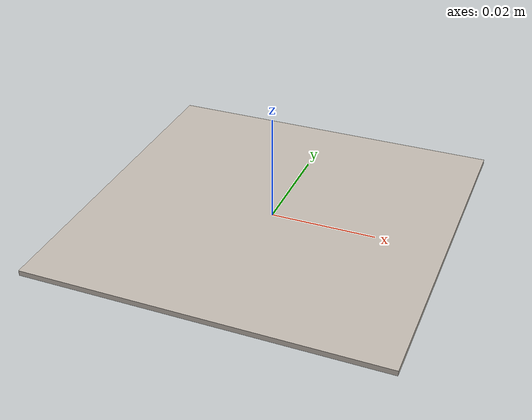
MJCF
<!-- generated by aruco_perception.sim_markers from the perception setup; do not hand-edit -->
<mujoco model="aruco_marker_1">
  <asset>
    <texture name="aruco_1_tex" type="2d" file="marker_1.png"/>
    <material name="aruco_1_mat" texture="aruco_1_tex" texrepeat="1 1"
              texuniform="false" specular="0" shininess="0" reflectance="0" emission="0.35"/>
  </asset>
  <worldbody>
    <body name="root">
      <geom name="marker" type="box" size="0.0333333 0.0333333 0.0005" pos="0 0 0.0005"
            material="aruco_1_mat" mass="0.01" contype="0" conaffinity="0"/>
    </body>
  </worldbody>
</mujoco>
